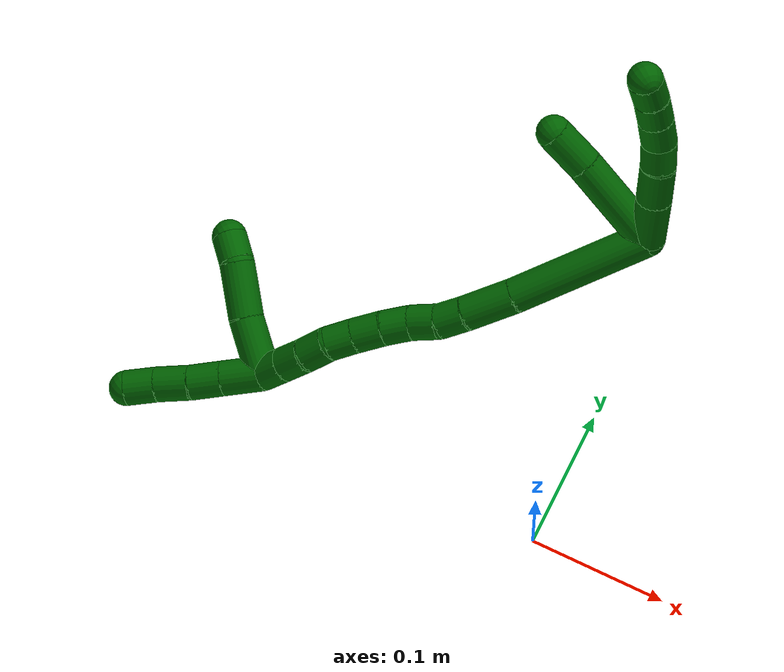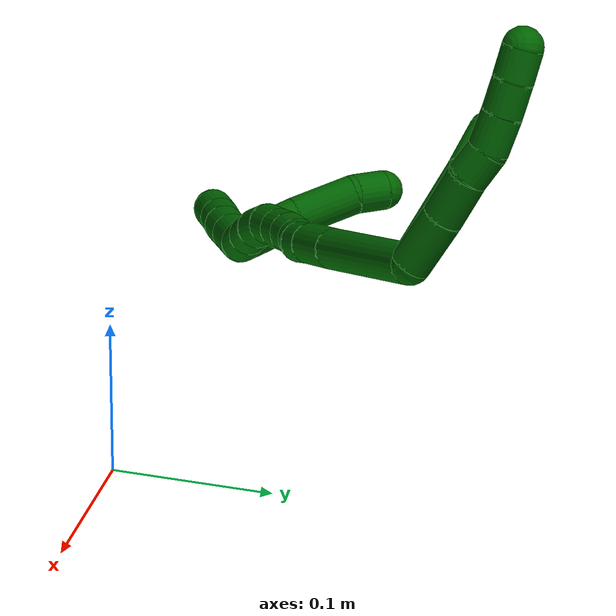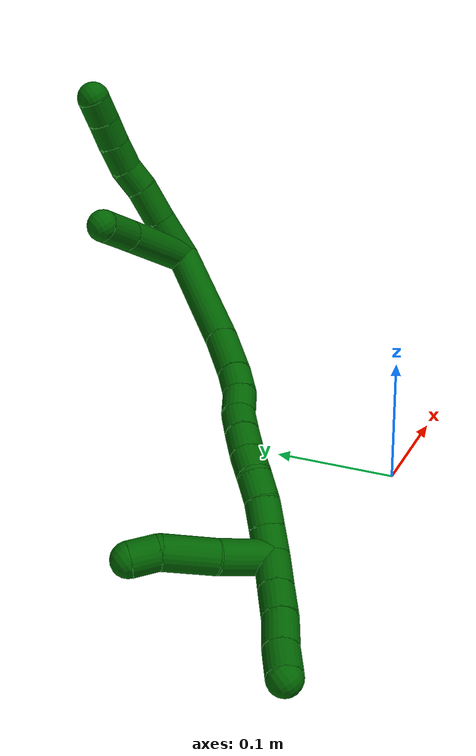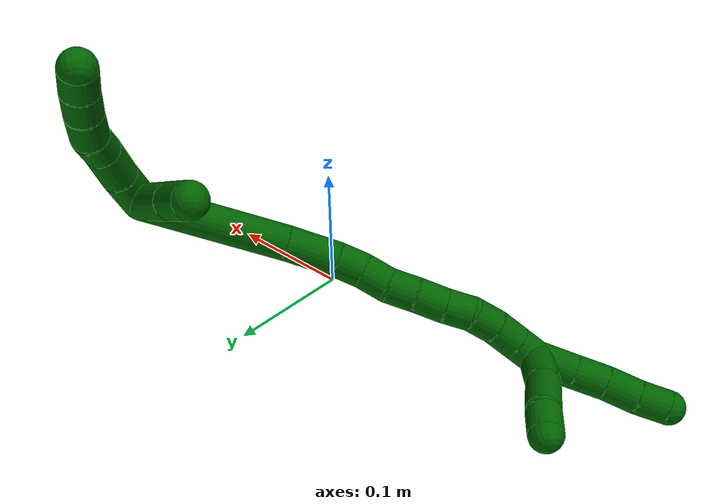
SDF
<sdf version="1.7">
 <world name="default">
  <model name="6">
   <static>0</static>
   <link name="6">
    <collision name="collision-cylinder-e_1_2_8">
     <pose>0.003679 0.017671 -0.000449 -1.59621 0.205184 -0.210428</pose>
     <geometry><cylinder><radius>0.0125</radius><length>0.036112</length></cylinder></geometry>
     <surface>
      <friction><ode><mu>1.16</mu><mu2>1.16</mu2><slip1>0</slip1><slip2>0</slip2></ode></friction>
      <contact><ode><kp>1e+06</kp><kd>1</kd><max_vel>0</max_vel><min_depth>0.001</min_depth></ode></contact>
     </surface>
    </collision>
    <visual name="visual-cylinder-e_1_2_8">
     <pose>0.003679 0.017671 -0.000449 -1.59621 0.205184 -0.210428</pose>
     <geometry><cylinder><radius>0.0125</radius><length>0.036112</length></cylinder></geometry>
     <material><ambient>0 0.392157 0.003922 1</ambient></material>
    </visual>
    <collision name="collision-cylinder-e_2_8_9">
     <pose>0.009749 0.049955 -0.000858 -1.56806 0.162196 -0.161755</pose>
     <geometry><cylinder><radius>0.0125</radius><length>0.029612</length></cylinder></geometry>
     <surface>
      <friction><ode><mu>1.16</mu><mu2>1.16</mu2><slip1>0</slip1><slip2>0</slip2></ode></friction>
      <contact><ode><kp>1e+06</kp><kd>1</kd><max_vel>0</max_vel><min_depth>0.001</min_depth></ode></contact>
     </surface>
    </collision>
    <visual name="visual-cylinder-e_2_8_9">
     <pose>0.009749 0.049955 -0.000858 -1.56806 0.162196 -0.161755</pose>
     <geometry><cylinder><radius>0.0125</radius><length>0.029612</length></cylinder></geometry>
     <material><ambient>0 0.392157 0.003922 1</ambient></material>
    </visual>
    <collision name="collision-cylinder-e_3_9_10">
     <pose>0.013737 0.074506 -0.002274 -1.71624 0.157655 -0.182303</pose>
     <geometry><cylinder><radius>0.0125</radius><length>0.020344</length></cylinder></geometry>
     <surface>
      <friction><ode><mu>1.16</mu><mu2>1.16</mu2><slip1>0</slip1><slip2>0</slip2></ode></friction>
      <contact><ode><kp>1e+06</kp><kd>1</kd><max_vel>0</max_vel><min_depth>0.001</min_depth></ode></contact>
     </surface>
    </collision>
    <visual name="visual-cylinder-e_3_9_10">
     <pose>0.013737 0.074506 -0.002274 -1.71624 0.157655 -0.182303</pose>
     <geometry><cylinder><radius>0.0125</radius><length>0.020344</length></cylinder></geometry>
     <material><ambient>0 0.392157 0.003922 1</ambient></material>
    </visual>
    <collision name="collision-cylinder-e_4_10_11">
     <pose>0.014558 0.096011 -0.003592 -1.55885 -0.066937 0.066142</pose>
     <geometry><cylinder><radius>0.0125</radius><length>0.023184</length></cylinder></geometry>
     <surface>
      <friction><ode><mu>1.16</mu><mu2>1.16</mu2><slip1>0</slip1><slip2>0</slip2></ode></friction>
      <contact><ode><kp>1e+06</kp><kd>1</kd><max_vel>0</max_vel><min_depth>0.001</min_depth></ode></contact>
     </surface>
    </collision>
    <visual name="visual-cylinder-e_4_10_11">
     <pose>0.014558 0.096011 -0.003592 -1.55885 -0.066937 0.066142</pose>
     <geometry><cylinder><radius>0.0125</radius><length>0.023184</length></cylinder></geometry>
     <material><ambient>0 0.392157 0.003922 1</ambient></material>
    </visual>
    <collision name="collision-cylinder-e_5_11_12">
     <pose>0.012623 0.117872 -0.003001 -1.52682 -0.112047 0.107234</pose>
     <geometry><cylinder><radius>0.0125</radius><length>0.020742</length></cylinder></geometry>
     <surface>
      <friction><ode><mu>1.16</mu><mu2>1.16</mu2><slip1>0</slip1><slip2>0</slip2></ode></friction>
      <contact><ode><kp>1e+06</kp><kd>1</kd><max_vel>0</max_vel><min_depth>0.001</min_depth></ode></contact>
     </surface>
    </collision>
    <visual name="visual-cylinder-e_5_11_12">
     <pose>0.012623 0.117872 -0.003001 -1.52682 -0.112047 0.107234</pose>
     <geometry><cylinder><radius>0.0125</radius><length>0.020742</length></cylinder></geometry>
     <material><ambient>0 0.392157 0.003922 1</ambient></material>
    </visual>
    <collision name="collision-cylinder-e_6_12_6">
     <pose>0.009739 0.13802 -0.002406 -1.55642 -0.173248 0.170788</pose>
     <geometry><cylinder><radius>0.0125</radius><length>0.020006</length></cylinder></geometry>
     <surface>
      <friction><ode><mu>1.16</mu><mu2>1.16</mu2><slip1>0</slip1><slip2>0</slip2></ode></friction>
      <contact><ode><kp>1e+06</kp><kd>1</kd><max_vel>0</max_vel><min_depth>0.001</min_depth></ode></contact>
     </surface>
    </collision>
    <visual name="visual-cylinder-e_6_12_6">
     <pose>0.009739 0.13802 -0.002406 -1.55642 -0.173248 0.170788</pose>
     <geometry><cylinder><radius>0.0125</radius><length>0.020006</length></cylinder></geometry>
     <material><ambient>0 0.392157 0.003922 1</ambient></material>
    </visual>
    <collision name="collision-cylinder-e_1_2_13">
     <pose>-0.013232 0.025819 -0.018789 -2.19989 -0.392845 0.745297</pose>
     <geometry><cylinder><radius>0.0125</radius><length>0.06913</length></cylinder></geometry>
     <surface>
      <friction><ode><mu>1.16</mu><mu2>1.16</mu2><slip1>0</slip1><slip2>0</slip2></ode></friction>
      <contact><ode><kp>1e+06</kp><kd>1</kd><max_vel>0</max_vel><min_depth>0.001</min_depth></ode></contact>
     </surface>
    </collision>
    <visual name="visual-cylinder-e_1_2_13">
     <pose>-0.013232 0.025819 -0.018789 -2.19989 -0.392845 0.745297</pose>
     <geometry><cylinder><radius>0.0125</radius><length>0.06913</length></cylinder></geometry>
     <material><ambient>0 0.392157 0.003922 1</ambient></material>
    </visual>
    <collision name="collision-cylinder-e_2_13_5">
     <pose>-0.033219 0.0628 -0.045826 -2.20714 -0.452934 0.856901</pose>
     <geometry><cylinder><radius>0.0125</radius><length>0.03087</length></cylinder></geometry>
     <surface>
      <friction><ode><mu>1.16</mu><mu2>1.16</mu2><slip1>0</slip1><slip2>0</slip2></ode></friction>
      <contact><ode><kp>1e+06</kp><kd>1</kd><max_vel>0</max_vel><min_depth>0.001</min_depth></ode></contact>
     </surface>
    </collision>
    <visual name="visual-cylinder-e_2_13_5">
     <pose>-0.033219 0.0628 -0.045826 -2.20714 -0.452934 0.856901</pose>
     <geometry><cylinder><radius>0.0125</radius><length>0.03087</length></cylinder></geometry>
     <material><ambient>0 0.392157 0.003922 1</ambient></material>
    </visual>
    <collision name="collision-cylinder-e_1_2_14">
     <pose>-0.045154 -0.018311 -0.013356 2.20098 -1.1056 -1.76325</pose>
     <geometry><cylinder><radius>0.0125</radius><length>0.101046</length></cylinder></geometry>
     <surface>
      <friction><ode><mu>1.16</mu><mu2>1.16</mu2><slip1>0</slip1><slip2>0</slip2></ode></friction>
      <contact><ode><kp>1e+06</kp><kd>1</kd><max_vel>0</max_vel><min_depth>0.001</min_depth></ode></contact>
     </surface>
    </collision>
    <visual name="visual-cylinder-e_1_2_14">
     <pose>-0.045154 -0.018311 -0.013356 2.20098 -1.1056 -1.76325</pose>
     <geometry><cylinder><radius>0.0125</radius><length>0.101046</length></cylinder></geometry>
     <material><ambient>0 0.392157 0.003922 1</ambient></material>
    </visual>
    <collision name="collision-cylinder-e_2_14_15">
     <pose>-0.106545 -0.04295 -0.032574 2.31798 -1.08246 -1.88484</pose>
     <geometry><cylinder><radius>0.0125</radius><length>0.03677</length></cylinder></geometry>
     <surface>
      <friction><ode><mu>1.16</mu><mu2>1.16</mu2><slip1>0</slip1><slip2>0</slip2></ode></friction>
      <contact><ode><kp>1e+06</kp><kd>1</kd><max_vel>0</max_vel><min_depth>0.001</min_depth></ode></contact>
     </surface>
    </collision>
    <visual name="visual-cylinder-e_2_14_15">
     <pose>-0.106545 -0.04295 -0.032574 2.31798 -1.08246 -1.88484</pose>
     <geometry><cylinder><radius>0.0125</radius><length>0.03677</length></cylinder></geometry>
     <material><ambient>0 0.392157 0.003922 1</ambient></material>
    </visual>
    <collision name="collision-cylinder-e_3_15_16">
     <pose>-0.131284 -0.052991 -0.042463 2.39677 -0.99848 -1.89836</pose>
     <geometry><cylinder><radius>0.0125</radius><length>0.020231</length></cylinder></geometry>
     <surface>
      <friction><ode><mu>1.16</mu><mu2>1.16</mu2><slip1>0</slip1><slip2>0</slip2></ode></friction>
      <contact><ode><kp>1e+06</kp><kd>1</kd><max_vel>0</max_vel><min_depth>0.001</min_depth></ode></contact>
     </surface>
    </collision>
    <visual name="visual-cylinder-e_3_15_16">
     <pose>-0.131284 -0.052991 -0.042463 2.39677 -0.99848 -1.89836</pose>
     <geometry><cylinder><radius>0.0125</radius><length>0.020231</length></cylinder></geometry>
     <material><ambient>0 0.392157 0.003922 1</ambient></material>
    </visual>
    <collision name="collision-cylinder-e_4_16_17">
     <pose>-0.147679 -0.059052 -0.052546 2.77162 -0.882187 -2.38688</pose>
     <geometry><cylinder><radius>0.0125</radius><length>0.020439</length></cylinder></geometry>
     <surface>
      <friction><ode><mu>1.16</mu><mu2>1.16</mu2><slip1>0</slip1><slip2>0</slip2></ode></friction>
      <contact><ode><kp>1e+06</kp><kd>1</kd><max_vel>0</max_vel><min_depth>0.001</min_depth></ode></contact>
     </surface>
    </collision>
    <visual name="visual-cylinder-e_4_16_17">
     <pose>-0.147679 -0.059052 -0.052546 2.77162 -0.882187 -2.38688</pose>
     <geometry><cylinder><radius>0.0125</radius><length>0.020439</length></cylinder></geometry>
     <material><ambient>0 0.392157 0.003922 1</ambient></material>
    </visual>
    <collision name="collision-cylinder-e_5_17_18">
     <pose>-0.164508 -0.063618 -0.062755 2.65128 -1.08589 -2.35552</pose>
     <geometry><cylinder><radius>0.0125</radius><length>0.020206</length></cylinder></geometry>
     <surface>
      <friction><ode><mu>1.16</mu><mu2>1.16</mu2><slip1>0</slip1><slip2>0</slip2></ode></friction>
      <contact><ode><kp>1e+06</kp><kd>1</kd><max_vel>0</max_vel><min_depth>0.001</min_depth></ode></contact>
     </surface>
    </collision>
    <visual name="visual-cylinder-e_5_17_18">
     <pose>-0.164508 -0.063618 -0.062755 2.65128 -1.08589 -2.35552</pose>
     <geometry><cylinder><radius>0.0125</radius><length>0.020206</length></cylinder></geometry>
     <material><ambient>0 0.392157 0.003922 1</ambient></material>
    </visual>
    <collision name="collision-cylinder-e_6_18_19">
     <pose>-0.182623 -0.069055 -0.071145 2.4917 -1.04542 -2.08339</pose>
     <geometry><cylinder><radius>0.0125</radius><length>0.021213</length></cylinder></geometry>
     <surface>
      <friction><ode><mu>1.16</mu><mu2>1.16</mu2><slip1>0</slip1><slip2>0</slip2></ode></friction>
      <contact><ode><kp>1e+06</kp><kd>1</kd><max_vel>0</max_vel><min_depth>0.001</min_depth></ode></contact>
     </surface>
    </collision>
    <visual name="visual-cylinder-e_6_18_19">
     <pose>-0.182623 -0.069055 -0.071145 2.4917 -1.04542 -2.08339</pose>
     <geometry><cylinder><radius>0.0125</radius><length>0.021213</length></cylinder></geometry>
     <material><ambient>0 0.392157 0.003922 1</ambient></material>
    </visual>
    <collision name="collision-cylinder-e_7_19_20">
     <pose>-0.200801 -0.075116 -0.078745 2.44016 -1.11571 -2.081</pose>
     <geometry><cylinder><radius>0.0125</radius><length>0.020044</length></cylinder></geometry>
     <surface>
      <friction><ode><mu>1.16</mu><mu2>1.16</mu2><slip1>0</slip1><slip2>0</slip2></ode></friction>
      <contact><ode><kp>1e+06</kp><kd>1</kd><max_vel>0</max_vel><min_depth>0.001</min_depth></ode></contact>
     </surface>
    </collision>
    <visual name="visual-cylinder-e_7_19_20">
     <pose>-0.200801 -0.075116 -0.078745 2.44016 -1.11571 -2.081</pose>
     <geometry><cylinder><radius>0.0125</radius><length>0.020044</length></cylinder></geometry>
     <material><ambient>0 0.392157 0.003922 1</ambient></material>
    </visual>
    <collision name="collision-cylinder-e_8_20_21">
     <pose>-0.217416 -0.083368 -0.085703 2.15706 -0.864665 -1.42103</pose>
     <geometry><cylinder><radius>0.0125</radius><length>0.020012</length></cylinder></geometry>
     <surface>
      <friction><ode><mu>1.16</mu><mu2>1.16</mu2><slip1>0</slip1><slip2>0</slip2></ode></friction>
      <contact><ode><kp>1e+06</kp><kd>1</kd><max_vel>0</max_vel><min_depth>0.001</min_depth></ode></contact>
     </surface>
    </collision>
    <visual name="visual-cylinder-e_8_20_21">
     <pose>-0.217416 -0.083368 -0.085703 2.15706 -0.864665 -1.42103</pose>
     <geometry><cylinder><radius>0.0125</radius><length>0.020012</length></cylinder></geometry>
     <material><ambient>0 0.392157 0.003922 1</ambient></material>
    </visual>
    <collision name="collision-cylinder-e_9_21_22">
     <pose>-0.231805 -0.09455 -0.09387 2.24092 -0.743582 -1.35739</pose>
     <geometry><cylinder><radius>0.0125</radius><length>0.020018</length></cylinder></geometry>
     <surface>
      <friction><ode><mu>1.16</mu><mu2>1.16</mu2><slip1>0</slip1><slip2>0</slip2></ode></friction>
      <contact><ode><kp>1e+06</kp><kd>1</kd><max_vel>0</max_vel><min_depth>0.001</min_depth></ode></contact>
     </surface>
    </collision>
    <visual name="visual-cylinder-e_9_21_22">
     <pose>-0.231805 -0.09455 -0.09387 2.24092 -0.743582 -1.35739</pose>
     <geometry><cylinder><radius>0.0125</radius><length>0.020018</length></cylinder></geometry>
     <material><ambient>0 0.392157 0.003922 1</ambient></material>
    </visual>
    <collision name="collision-cylinder-e_10_22_1">
     <pose>-0.245337 -0.106087 -0.103065 2.24649 -0.74091 -1.3605</pose>
     <geometry><cylinder><radius>0.0125</radius><length>0.02002</length></cylinder></geometry>
     <surface>
      <friction><ode><mu>1.16</mu><mu2>1.16</mu2><slip1>0</slip1><slip2>0</slip2></ode></friction>
      <contact><ode><kp>1e+06</kp><kd>1</kd><max_vel>0</max_vel><min_depth>0.001</min_depth></ode></contact>
     </surface>
    </collision>
    <visual name="visual-cylinder-e_10_22_1">
     <pose>-0.245337 -0.106087 -0.103065 2.24649 -0.74091 -1.3605</pose>
     <geometry><cylinder><radius>0.0125</radius><length>0.02002</length></cylinder></geometry>
     <material><ambient>0 0.392157 0.003922 1</ambient></material>
    </visual>
    <collision name="collision-cylinder-e_1_1_23">
     <pose>-0.26475 -0.114442 -0.114348 2.7707 -1.0566 -2.51958</pose>
     <geometry><cylinder><radius>0.0125</radius><length>0.029073</length></cylinder></geometry>
     <surface>
      <friction><ode><mu>1.16</mu><mu2>1.16</mu2><slip1>0</slip1><slip2>0</slip2></ode></friction>
      <contact><ode><kp>1e+06</kp><kd>1</kd><max_vel>0</max_vel><min_depth>0.001</min_depth></ode></contact>
     </surface>
    </collision>
    <visual name="visual-cylinder-e_1_1_23">
     <pose>-0.26475 -0.114442 -0.114348 2.7707 -1.0566 -2.51958</pose>
     <geometry><cylinder><radius>0.0125</radius><length>0.029073</length></cylinder></geometry>
     <material><ambient>0 0.392157 0.003922 1</ambient></material>
    </visual>
    <collision name="collision-cylinder-e_2_23_24">
     <pose>-0.287785 -0.119094 -0.126324 2.77149 -1.06866 -2.52884</pose>
     <geometry><cylinder><radius>0.0125</radius><length>0.02368</length></cylinder></geometry>
     <surface>
      <friction><ode><mu>1.16</mu><mu2>1.16</mu2><slip1>0</slip1><slip2>0</slip2></ode></friction>
      <contact><ode><kp>1e+06</kp><kd>1</kd><max_vel>0</max_vel><min_depth>0.001</min_depth></ode></contact>
     </surface>
    </collision>
    <visual name="visual-cylinder-e_2_23_24">
     <pose>-0.287785 -0.119094 -0.126324 2.77149 -1.06866 -2.52884</pose>
     <geometry><cylinder><radius>0.0125</radius><length>0.02368</length></cylinder></geometry>
     <material><ambient>0 0.392157 0.003922 1</ambient></material>
    </visual>
    <collision name="collision-cylinder-e_3_24_25">
     <pose>-0.308513 -0.123223 -0.138256 2.83884 -0.980495 -2.5848</pose>
     <geometry><cylinder><radius>0.0125</radius><length>0.024916</length></cylinder></geometry>
     <surface>
      <friction><ode><mu>1.16</mu><mu2>1.16</mu2><slip1>0</slip1><slip2>0</slip2></ode></friction>
      <contact><ode><kp>1e+06</kp><kd>1</kd><max_vel>0</max_vel><min_depth>0.001</min_depth></ode></contact>
     </surface>
    </collision>
    <visual name="visual-cylinder-e_3_24_25">
     <pose>-0.308513 -0.123223 -0.138256 2.83884 -0.980495 -2.5848</pose>
     <geometry><cylinder><radius>0.0125</radius><length>0.024916</length></cylinder></geometry>
     <material><ambient>0 0.392157 0.003922 1</ambient></material>
    </visual>
    <collision name="collision-cylinder-e_4_25_4">
     <pose>-0.328704 -0.126971 -0.149875 2.8174 -1.07875 -2.60821</pose>
     <geometry><cylinder><radius>0.0125</radius><length>0.022331</length></cylinder></geometry>
     <surface>
      <friction><ode><mu>1.16</mu><mu2>1.16</mu2><slip1>0</slip1><slip2>0</slip2></ode></friction>
      <contact><ode><kp>1e+06</kp><kd>1</kd><max_vel>0</max_vel><min_depth>0.001</min_depth></ode></contact>
     </surface>
    </collision>
    <visual name="visual-cylinder-e_4_25_4">
     <pose>-0.328704 -0.126971 -0.149875 2.8174 -1.07875 -2.60821</pose>
     <geometry><cylinder><radius>0.0125</radius><length>0.022331</length></cylinder></geometry>
     <material><ambient>0 0.392157 0.003922 1</ambient></material>
    </visual>
    <collision name="collision-cylinder-e_1_1_26">
     <pose>-0.250454 -0.099665 -0.123452 -2.48366 0.082039 -0.239309</pose>
     <geometry><cylinder><radius>0.0125</radius><length>0.039988</length></cylinder></geometry>
     <surface>
      <friction><ode><mu>1.16</mu><mu2>1.16</mu2><slip1>0</slip1><slip2>0</slip2></ode></friction>
      <contact><ode><kp>1e+06</kp><kd>1</kd><max_vel>0</max_vel><min_depth>0.001</min_depth></ode></contact>
     </surface>
    </collision>
    <visual name="visual-cylinder-e_1_1_26">
     <pose>-0.250454 -0.099665 -0.123452 -2.48366 0.082039 -0.239309</pose>
     <geometry><cylinder><radius>0.0125</radius><length>0.039988</length></cylinder></geometry>
     <material><ambient>0 0.392157 0.003922 1</ambient></material>
    </visual>
    <collision name="collision-cylinder-e_2_26_27">
     <pose>-0.244731 -0.075303 -0.154286 -2.46187 0.2078 -0.573564</pose>
     <geometry><cylinder><radius>0.0125</radius><length>0.039598</length></cylinder></geometry>
     <surface>
      <friction><ode><mu>1.16</mu><mu2>1.16</mu2><slip1>0</slip1><slip2>0</slip2></ode></friction>
      <contact><ode><kp>1e+06</kp><kd>1</kd><max_vel>0</max_vel><min_depth>0.001</min_depth></ode></contact>
     </surface>
    </collision>
    <visual name="visual-cylinder-e_2_26_27">
     <pose>-0.244731 -0.075303 -0.154286 -2.46187 0.2078 -0.573564</pose>
     <geometry><cylinder><radius>0.0125</radius><length>0.039598</length></cylinder></geometry>
     <material><ambient>0 0.392157 0.003922 1</ambient></material>
    </visual>
    <collision name="collision-cylinder-e_3_27_3">
     <pose>-0.23915 -0.059586 -0.17881 -2.78342 0.147134 -0.773273</pose>
     <geometry><cylinder><radius>0.0125</radius><length>0.020414</length></cylinder></geometry>
     <surface>
      <friction><ode><mu>1.16</mu><mu2>1.16</mu2><slip1>0</slip1><slip2>0</slip2></ode></friction>
      <contact><ode><kp>1e+06</kp><kd>1</kd><max_vel>0</max_vel><min_depth>0.001</min_depth></ode></contact>
     </surface>
    </collision>
    <visual name="visual-cylinder-e_3_27_3">
     <pose>-0.23915 -0.059586 -0.17881 -2.78342 0.147134 -0.773273</pose>
     <geometry><cylinder><radius>0.0125</radius><length>0.020414</length></cylinder></geometry>
     <material><ambient>0 0.392157 0.003922 1</ambient></material>
    </visual>
    <collision name="collision-sphere-3">
     <pose>-0.237654 -0.056047 -0.188266 0 -0 0</pose>
     <geometry><sphere><radius>0.0125</radius></sphere></geometry>
     <surface>
      <friction><ode><mu>1.16</mu><mu2>1.16</mu2><slip1>0</slip1><slip2>0</slip2></ode></friction>
      <contact><ode><kp>1e+06</kp><kd>1</kd><max_vel>0</max_vel><min_depth>0.001</min_depth></ode></contact>
     </surface>
    </collision>
    <visual name="visual-sphere-3">
     <pose>-0.237654 -0.056047 -0.188266 0 -0 0</pose>
     <geometry><sphere><radius>0.0125</radius></sphere></geometry>
     <material><ambient>0 0.392157 0.003922 1</ambient></material>
    </visual>
    <collision name="collision-sphere-27">
     <pose>-0.240647 -0.063126 -0.169354 0 -0 0</pose>
     <geometry><sphere><radius>0.0125</radius></sphere></geometry>
     <surface>
      <friction><ode><mu>1.16</mu><mu2>1.16</mu2><slip1>0</slip1><slip2>0</slip2></ode></friction>
      <contact><ode><kp>1e+06</kp><kd>1</kd><max_vel>0</max_vel><min_depth>0.001</min_depth></ode></contact>
     </surface>
    </collision>
    <visual name="visual-sphere-27">
     <pose>-0.240647 -0.063126 -0.169354 0 -0 0</pose>
     <geometry><sphere><radius>0.0125</radius></sphere></geometry>
     <material><ambient>0 0.392157 0.003922 1</ambient></material>
    </visual>
    <collision name="collision-sphere-26">
     <pose>-0.248816 -0.087481 -0.139219 0 -0 0</pose>
     <geometry><sphere><radius>0.0125</radius></sphere></geometry>
     <surface>
      <friction><ode><mu>1.16</mu><mu2>1.16</mu2><slip1>0</slip1><slip2>0</slip2></ode></friction>
      <contact><ode><kp>1e+06</kp><kd>1</kd><max_vel>0</max_vel><min_depth>0.001</min_depth></ode></contact>
     </surface>
    </collision>
    <visual name="visual-sphere-26">
     <pose>-0.248816 -0.087481 -0.139219 0 -0 0</pose>
     <geometry><sphere><radius>0.0125</radius></sphere></geometry>
     <material><ambient>0 0.392157 0.003922 1</ambient></material>
    </visual>
    <collision name="collision-sphere-4">
     <pose>-0.338545 -0.128651 -0.154875 0 -0 0</pose>
     <geometry><sphere><radius>0.0125</radius></sphere></geometry>
     <surface>
      <friction><ode><mu>1.16</mu><mu2>1.16</mu2><slip1>0</slip1><slip2>0</slip2></ode></friction>
      <contact><ode><kp>1e+06</kp><kd>1</kd><max_vel>0</max_vel><min_depth>0.001</min_depth></ode></contact>
     </surface>
    </collision>
    <visual name="visual-sphere-4">
     <pose>-0.338545 -0.128651 -0.154875 0 -0 0</pose>
     <geometry><sphere><radius>0.0125</radius></sphere></geometry>
     <material><ambient>0 0.392157 0.003922 1</ambient></material>
    </visual>
    <collision name="collision-sphere-25">
     <pose>-0.318863 -0.12529 -0.144875 0 -0 0</pose>
     <geometry><sphere><radius>0.0125</radius></sphere></geometry>
     <surface>
      <friction><ode><mu>1.16</mu><mu2>1.16</mu2><slip1>0</slip1><slip2>0</slip2></ode></friction>
      <contact><ode><kp>1e+06</kp><kd>1</kd><max_vel>0</max_vel><min_depth>0.001</min_depth></ode></contact>
     </surface>
    </collision>
    <visual name="visual-sphere-25">
     <pose>-0.318863 -0.12529 -0.144875 0 -0 0</pose>
     <geometry><sphere><radius>0.0125</radius></sphere></geometry>
     <material><ambient>0 0.392157 0.003922 1</ambient></material>
    </visual>
    <collision name="collision-sphere-24">
     <pose>-0.298163 -0.121155 -0.131637 0 -0 0</pose>
     <geometry><sphere><radius>0.0125</radius></sphere></geometry>
     <surface>
      <friction><ode><mu>1.16</mu><mu2>1.16</mu2><slip1>0</slip1><slip2>0</slip2></ode></friction>
      <contact><ode><kp>1e+06</kp><kd>1</kd><max_vel>0</max_vel><min_depth>0.001</min_depth></ode></contact>
     </surface>
    </collision>
    <visual name="visual-sphere-24">
     <pose>-0.298163 -0.121155 -0.131637 0 -0 0</pose>
     <geometry><sphere><radius>0.0125</radius></sphere></geometry>
     <material><ambient>0 0.392157 0.003922 1</ambient></material>
    </visual>
    <collision name="collision-sphere-23">
     <pose>-0.277407 -0.117033 -0.121012 0 -0 0</pose>
     <geometry><sphere><radius>0.0125</radius></sphere></geometry>
     <surface>
      <friction><ode><mu>1.16</mu><mu2>1.16</mu2><slip1>0</slip1><slip2>0</slip2></ode></friction>
      <contact><ode><kp>1e+06</kp><kd>1</kd><max_vel>0</max_vel><min_depth>0.001</min_depth></ode></contact>
     </surface>
    </collision>
    <visual name="visual-sphere-23">
     <pose>-0.277407 -0.117033 -0.121012 0 -0 0</pose>
     <geometry><sphere><radius>0.0125</radius></sphere></geometry>
     <material><ambient>0 0.392157 0.003922 1</ambient></material>
    </visual>
    <collision name="collision-sphere-1">
     <pose>-0.252093 -0.11185 -0.107685 0 -0 0</pose>
     <geometry><sphere><radius>0.0125</radius></sphere></geometry>
     <surface>
      <friction><ode><mu>1.16</mu><mu2>1.16</mu2><slip1>0</slip1><slip2>0</slip2></ode></friction>
      <contact><ode><kp>1e+06</kp><kd>1</kd><max_vel>0</max_vel><min_depth>0.001</min_depth></ode></contact>
     </surface>
    </collision>
    <visual name="visual-sphere-1">
     <pose>-0.252093 -0.11185 -0.107685 0 -0 0</pose>
     <geometry><sphere><radius>0.0125</radius></sphere></geometry>
     <material><ambient>0 0.392157 0.003922 1</ambient></material>
    </visual>
    <collision name="collision-sphere-22">
     <pose>-0.23858 -0.100324 -0.098446 0 -0 0</pose>
     <geometry><sphere><radius>0.0125</radius></sphere></geometry>
     <surface>
      <friction><ode><mu>1.16</mu><mu2>1.16</mu2><slip1>0</slip1><slip2>0</slip2></ode></friction>
      <contact><ode><kp>1e+06</kp><kd>1</kd><max_vel>0</max_vel><min_depth>0.001</min_depth></ode></contact>
     </surface>
    </collision>
    <visual name="visual-sphere-22">
     <pose>-0.23858 -0.100324 -0.098446 0 -0 0</pose>
     <geometry><sphere><radius>0.0125</radius></sphere></geometry>
     <material><ambient>0 0.392157 0.003922 1</ambient></material>
    </visual>
    <collision name="collision-sphere-21">
     <pose>-0.22503 -0.088776 -0.089295 0 -0 0</pose>
     <geometry><sphere><radius>0.0125</radius></sphere></geometry>
     <surface>
      <friction><ode><mu>1.16</mu><mu2>1.16</mu2><slip1>0</slip1><slip2>0</slip2></ode></friction>
      <contact><ode><kp>1e+06</kp><kd>1</kd><max_vel>0</max_vel><min_depth>0.001</min_depth></ode></contact>
     </surface>
    </collision>
    <visual name="visual-sphere-21">
     <pose>-0.22503 -0.088776 -0.089295 0 -0 0</pose>
     <geometry><sphere><radius>0.0125</radius></sphere></geometry>
     <material><ambient>0 0.392157 0.003922 1</ambient></material>
    </visual>
    <collision name="collision-sphere-12">
     <pose>0.011464 0.128168 -0.002548 0 -0 0</pose>
     <geometry><sphere><radius>0.0125</radius></sphere></geometry>
     <surface>
      <friction><ode><mu>1.16</mu><mu2>1.16</mu2><slip1>0</slip1><slip2>0</slip2></ode></friction>
      <contact><ode><kp>1e+06</kp><kd>1</kd><max_vel>0</max_vel><min_depth>0.001</min_depth></ode></contact>
     </surface>
    </collision>
    <visual name="visual-sphere-12">
     <pose>0.011464 0.128168 -0.002548 0 -0 0</pose>
     <geometry><sphere><radius>0.0125</radius></sphere></geometry>
     <material><ambient>0 0.392157 0.003922 1</ambient></material>
    </visual>
    <collision name="collision-sphere-11">
     <pose>0.013783 0.107576 -0.003454 0 -0 0</pose>
     <geometry><sphere><radius>0.0125</radius></sphere></geometry>
     <surface>
      <friction><ode><mu>1.16</mu><mu2>1.16</mu2><slip1>0</slip1><slip2>0</slip2></ode></friction>
      <contact><ode><kp>1e+06</kp><kd>1</kd><max_vel>0</max_vel><min_depth>0.001</min_depth></ode></contact>
     </surface>
    </collision>
    <visual name="visual-sphere-11">
     <pose>0.013783 0.107576 -0.003454 0 -0 0</pose>
     <geometry><sphere><radius>0.0125</radius></sphere></geometry>
     <material><ambient>0 0.392157 0.003922 1</ambient></material>
    </visual>
    <collision name="collision-sphere-10">
     <pose>0.015334 0.084446 -0.00373 0 -0 0</pose>
     <geometry><sphere><radius>0.0125</radius></sphere></geometry>
     <surface>
      <friction><ode><mu>1.16</mu><mu2>1.16</mu2><slip1>0</slip1><slip2>0</slip2></ode></friction>
      <contact><ode><kp>1e+06</kp><kd>1</kd><max_vel>0</max_vel><min_depth>0.001</min_depth></ode></contact>
     </surface>
    </collision>
    <visual name="visual-sphere-10">
     <pose>0.015334 0.084446 -0.00373 0 -0 0</pose>
     <geometry><sphere><radius>0.0125</radius></sphere></geometry>
     <material><ambient>0 0.392157 0.003922 1</ambient></material>
    </visual>
    <collision name="collision-sphere-9">
     <pose>0.01214 0.064566 -0.000818 0 -0 0</pose>
     <geometry><sphere><radius>0.0125</radius></sphere></geometry>
     <surface>
      <friction><ode><mu>1.16</mu><mu2>1.16</mu2><slip1>0</slip1><slip2>0</slip2></ode></friction>
      <contact><ode><kp>1e+06</kp><kd>1</kd><max_vel>0</max_vel><min_depth>0.001</min_depth></ode></contact>
     </surface>
    </collision>
    <visual name="visual-sphere-9">
     <pose>0.01214 0.064566 -0.000818 0 -0 0</pose>
     <geometry><sphere><radius>0.0125</radius></sphere></geometry>
     <material><ambient>0 0.392157 0.003922 1</ambient></material>
    </visual>
    <collision name="collision-sphere-2">
     <geometry><sphere><radius>0.0125</radius></sphere></geometry>
     <surface>
      <friction><ode><mu>1.16</mu><mu2>1.16</mu2><slip1>0</slip1><slip2>0</slip2></ode></friction>
      <contact><ode><kp>1e+06</kp><kd>1</kd><max_vel>0</max_vel><min_depth>0.001</min_depth></ode></contact>
     </surface>
    </collision>
    <visual name="visual-sphere-2">
     <geometry><sphere><radius>0.0125</radius></sphere></geometry>
     <material><ambient>0 0.392157 0.003922 1</ambient></material>
    </visual>
    <collision name="collision-sphere-19">
     <pose>-0.191799 -0.072274 -0.07538 0 -0 0</pose>
     <geometry><sphere><radius>0.0125</radius></sphere></geometry>
     <surface>
      <friction><ode><mu>1.16</mu><mu2>1.16</mu2><slip1>0</slip1><slip2>0</slip2></ode></friction>
      <contact><ode><kp>1e+06</kp><kd>1</kd><max_vel>0</max_vel><min_depth>0.001</min_depth></ode></contact>
     </surface>
    </collision>
    <visual name="visual-sphere-19">
     <pose>-0.191799 -0.072274 -0.07538 0 -0 0</pose>
     <geometry><sphere><radius>0.0125</radius></sphere></geometry>
     <material><ambient>0 0.392157 0.003922 1</ambient></material>
    </visual>
    <collision name="collision-sphere-8">
     <pose>0.007358 0.035343 -0.000898 0 -0 0</pose>
     <geometry><sphere><radius>0.0125</radius></sphere></geometry>
     <surface>
      <friction><ode><mu>1.16</mu><mu2>1.16</mu2><slip1>0</slip1><slip2>0</slip2></ode></friction>
      <contact><ode><kp>1e+06</kp><kd>1</kd><max_vel>0</max_vel><min_depth>0.001</min_depth></ode></contact>
     </surface>
    </collision>
    <visual name="visual-sphere-8">
     <pose>0.007358 0.035343 -0.000898 0 -0 0</pose>
     <geometry><sphere><radius>0.0125</radius></sphere></geometry>
     <material><ambient>0 0.392157 0.003922 1</ambient></material>
    </visual>
    <collision name="collision-sphere-6">
     <pose>0.008015 0.147873 -0.002265 0 -0 0</pose>
     <geometry><sphere><radius>0.0125</radius></sphere></geometry>
     <surface>
      <friction><ode><mu>1.16</mu><mu2>1.16</mu2><slip1>0</slip1><slip2>0</slip2></ode></friction>
      <contact><ode><kp>1e+06</kp><kd>1</kd><max_vel>0</max_vel><min_depth>0.001</min_depth></ode></contact>
     </surface>
    </collision>
    <visual name="visual-sphere-6">
     <pose>0.008015 0.147873 -0.002265 0 -0 0</pose>
     <geometry><sphere><radius>0.0125</radius></sphere></geometry>
     <material><ambient>0 0.392157 0.003922 1</ambient></material>
    </visual>
    <collision name="collision-sphere-13">
     <pose>-0.026464 0.051638 -0.037579 0 -0 0</pose>
     <geometry><sphere><radius>0.0125</radius></sphere></geometry>
     <surface>
      <friction><ode><mu>1.16</mu><mu2>1.16</mu2><slip1>0</slip1><slip2>0</slip2></ode></friction>
      <contact><ode><kp>1e+06</kp><kd>1</kd><max_vel>0</max_vel><min_depth>0.001</min_depth></ode></contact>
     </surface>
    </collision>
    <visual name="visual-sphere-13">
     <pose>-0.026464 0.051638 -0.037579 0 -0 0</pose>
     <geometry><sphere><radius>0.0125</radius></sphere></geometry>
     <material><ambient>0 0.392157 0.003922 1</ambient></material>
    </visual>
    <collision name="collision-sphere-5">
     <pose>-0.039973 0.073962 -0.054074 0 -0 0</pose>
     <geometry><sphere><radius>0.0125</radius></sphere></geometry>
     <surface>
      <friction><ode><mu>1.16</mu><mu2>1.16</mu2><slip1>0</slip1><slip2>0</slip2></ode></friction>
      <contact><ode><kp>1e+06</kp><kd>1</kd><max_vel>0</max_vel><min_depth>0.001</min_depth></ode></contact>
     </surface>
    </collision>
    <visual name="visual-sphere-5">
     <pose>-0.039973 0.073962 -0.054074 0 -0 0</pose>
     <geometry><sphere><radius>0.0125</radius></sphere></geometry>
     <material><ambient>0 0.392157 0.003922 1</ambient></material>
    </visual>
    <collision name="collision-sphere-14">
     <pose>-0.090309 -0.036622 -0.026712 0 -0 0</pose>
     <geometry><sphere><radius>0.0125</radius></sphere></geometry>
     <surface>
      <friction><ode><mu>1.16</mu><mu2>1.16</mu2><slip1>0</slip1><slip2>0</slip2></ode></friction>
      <contact><ode><kp>1e+06</kp><kd>1</kd><max_vel>0</max_vel><min_depth>0.001</min_depth></ode></contact>
     </surface>
    </collision>
    <visual name="visual-sphere-14">
     <pose>-0.090309 -0.036622 -0.026712 0 -0 0</pose>
     <geometry><sphere><radius>0.0125</radius></sphere></geometry>
     <material><ambient>0 0.392157 0.003922 1</ambient></material>
    </visual>
    <collision name="collision-sphere-15">
     <pose>-0.122781 -0.049277 -0.038436 0 -0 0</pose>
     <geometry><sphere><radius>0.0125</radius></sphere></geometry>
     <surface>
      <friction><ode><mu>1.16</mu><mu2>1.16</mu2><slip1>0</slip1><slip2>0</slip2></ode></friction>
      <contact><ode><kp>1e+06</kp><kd>1</kd><max_vel>0</max_vel><min_depth>0.001</min_depth></ode></contact>
     </surface>
    </collision>
    <visual name="visual-sphere-15">
     <pose>-0.122781 -0.049277 -0.038436 0 -0 0</pose>
     <geometry><sphere><radius>0.0125</radius></sphere></geometry>
     <material><ambient>0 0.392157 0.003922 1</ambient></material>
    </visual>
    <collision name="collision-sphere-16">
     <pose>-0.139788 -0.056704 -0.046491 0 -0 0</pose>
     <geometry><sphere><radius>0.0125</radius></sphere></geometry>
     <surface>
      <friction><ode><mu>1.16</mu><mu2>1.16</mu2><slip1>0</slip1><slip2>0</slip2></ode></friction>
      <contact><ode><kp>1e+06</kp><kd>1</kd><max_vel>0</max_vel><min_depth>0.001</min_depth></ode></contact>
     </surface>
    </collision>
    <visual name="visual-sphere-16">
     <pose>-0.139788 -0.056704 -0.046491 0 -0 0</pose>
     <geometry><sphere><radius>0.0125</radius></sphere></geometry>
     <material><ambient>0 0.392157 0.003922 1</ambient></material>
    </visual>
    <collision name="collision-sphere-17">
     <pose>-0.15557 -0.061401 -0.058601 0 -0 0</pose>
     <geometry><sphere><radius>0.0125</radius></sphere></geometry>
     <surface>
      <friction><ode><mu>1.16</mu><mu2>1.16</mu2><slip1>0</slip1><slip2>0</slip2></ode></friction>
      <contact><ode><kp>1e+06</kp><kd>1</kd><max_vel>0</max_vel><min_depth>0.001</min_depth></ode></contact>
     </surface>
    </collision>
    <visual name="visual-sphere-17">
     <pose>-0.15557 -0.061401 -0.058601 0 -0 0</pose>
     <geometry><sphere><radius>0.0125</radius></sphere></geometry>
     <material><ambient>0 0.392157 0.003922 1</ambient></material>
    </visual>
    <collision name="collision-sphere-18">
     <pose>-0.173447 -0.065836 -0.06691 0 -0 0</pose>
     <geometry><sphere><radius>0.0125</radius></sphere></geometry>
     <surface>
      <friction><ode><mu>1.16</mu><mu2>1.16</mu2><slip1>0</slip1><slip2>0</slip2></ode></friction>
      <contact><ode><kp>1e+06</kp><kd>1</kd><max_vel>0</max_vel><min_depth>0.001</min_depth></ode></contact>
     </surface>
    </collision>
    <visual name="visual-sphere-18">
     <pose>-0.173447 -0.065836 -0.06691 0 -0 0</pose>
     <geometry><sphere><radius>0.0125</radius></sphere></geometry>
     <material><ambient>0 0.392157 0.003922 1</ambient></material>
    </visual>
    <collision name="collision-sphere-20">
     <pose>-0.209803 -0.077959 -0.08211 0 -0 0</pose>
     <geometry><sphere><radius>0.0125</radius></sphere></geometry>
     <surface>
      <friction><ode><mu>1.16</mu><mu2>1.16</mu2><slip1>0</slip1><slip2>0</slip2></ode></friction>
      <contact><ode><kp>1e+06</kp><kd>1</kd><max_vel>0</max_vel><min_depth>0.001</min_depth></ode></contact>
     </surface>
    </collision>
    <visual name="visual-sphere-20">
     <pose>-0.209803 -0.077959 -0.08211 0 -0 0</pose>
     <geometry><sphere><radius>0.0125</radius></sphere></geometry>
     <material><ambient>0 0.392157 0.003922 1</ambient></material>
    </visual>
    <inertial>
     <pose>-0.125137 -0.02813 -0.06039 0 -0 0</pose>
     <mass>0.75</mass>
     <inertia><ixx>-2.8e-05</ixx><ixy>0</ixy><ixz>0</ixz><iyy>5.3e-05</iyy><iyz>0</iyz><izz>8.1e-05</izz></inertia>
    </inertial>
   </link>
   <pose>-0.00457 0.182533 0.166248 1.14844 0.094432 0.860668</pose>
  </model>
 </world>
</sdf>
